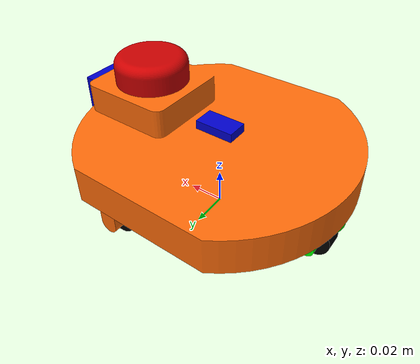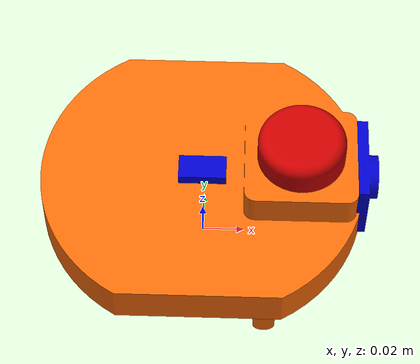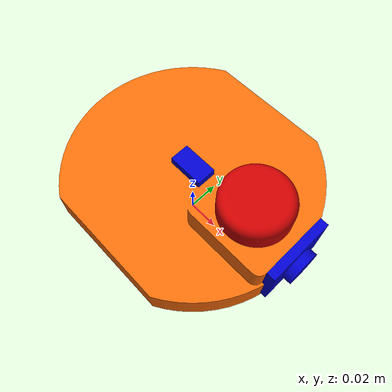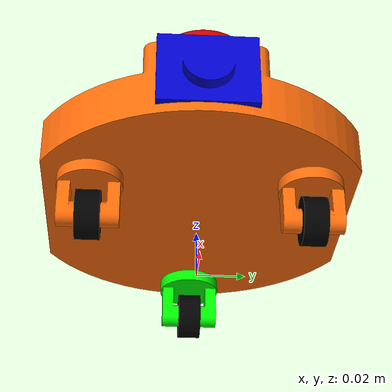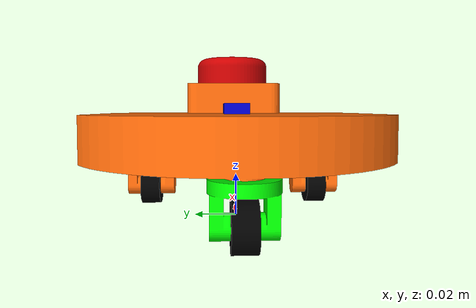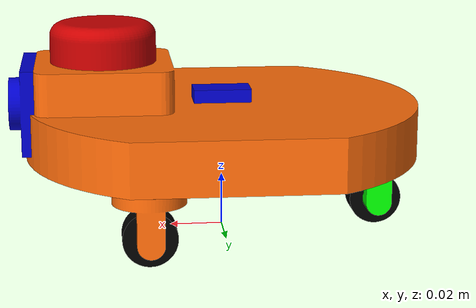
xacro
<?xml version="1.0" ?>
<robot name="steer_drive" xmlns:xacro="http://www.ros.org/wiki/xacro">

<xacro:include filename="$(find steer_drive_description)/urdf/materials.xacro" />
<xacro:include filename="$(find steer_drive_description)/urdf/steer_drive.trans" />
<xacro:include filename="$(find steer_drive_description)/urdf/steer_drive.gazebo" />

<link name="base_footprint"/>
  <joint name="base_joint" type="fixed">
    <parent link="base_footprint"/>
    <child link="base_link" />
    <origin xyz="0 0 0" rpy="0 0 0"/>
  </joint>

<link name="base_link">
  <inertial>
    <origin xyz="0.004894653541401669 -1.2125126773511758e-17 0.04142676341755822" rpy="0 0 0"/>
    <mass value="2.944106705966295"/>
    <inertia ixx="0.003408" iyy="0.004707" izz="0.00774" ixy="-0.0" iyz="-0.0" ixz="-0.000232"/>
  </inertial>
  <visual>
    <origin xyz="0 0 0" rpy="0 0 0"/>
    <geometry>
      <mesh filename="package://steer_drive_description/meshes/base_link.stl" scale="0.001 0.001 0.001"/>
    </geometry>
    <material name="orange"/>
  </visual>
  <collision>
    <origin xyz="0 0 0" rpy="0 0 0"/>
    <geometry>
      <mesh filename="package://steer_drive_description/meshes/base_link.stl" scale="0.001 0.001 0.001"/>
    </geometry>
  </collision>
</link>

<link name="lidar_1">
  <inertial>
    <origin xyz="0.0 -3.901291635943797e-18 0.0072778660919538" rpy="0 0 0"/>
    <mass value="0.01930579331641016"/>
    <inertia ixx="2e-06" iyy="2e-06" izz="4e-06" ixy="-0.0" iyz="-0.0" ixz="0.0"/>
  </inertial>
  <visual>
    <origin xyz="-0.045 -0.0 -0.0655" rpy="0 0 0"/>
    <geometry>
      <mesh filename="package://steer_drive_description/meshes/lidar_1.stl" scale="0.001 0.001 0.001"/>
    </geometry>
    <material name="red"/>
  </visual>
  <collision>
    <origin xyz="-0.045 -0.0 -0.0655" rpy="0 0 0"/>
    <geometry>
      <mesh filename="package://steer_drive_description/meshes/lidar_1.stl" scale="0.001 0.001 0.001"/>
    </geometry>
  </collision>
</link>

<link name="camera_1">
  <inertial>
    <origin xyz="0.0034850227833493203 4.121538431164246e-13 0.0" rpy="0 0 0"/>
    <mass value="0.008449044106402657"/>
    <inertia ixx="2e-06" iyy="1e-06" izz="1e-06" ixy="0.0" iyz="-0.0" ixz="-0.0"/>
  </inertial>
  <visual>
    <origin xyz="-0.070711 -0.0 -0.0495" rpy="0 0 0"/>
    <geometry>
      <mesh filename="package://steer_drive_description/meshes/camera_1.stl" scale="0.001 0.001 0.001"/>
    </geometry>
    <material name="blue"/>
  </visual>
  <collision>
    <origin xyz="-0.070711 -0.0 -0.0495" rpy="0 0 0"/>
    <geometry>
      <mesh filename="package://steer_drive_description/meshes/camera_1.stl" scale="0.001 0.001 0.001"/>
    </geometry>
  </collision>
</link>

<link name="imu_1">
  <inertial>
    <origin xyz="0.0 0.0 0.0025000000000000022" rpy="0 0 0"/>
    <mass value="0.0013992000416994097"/>
    <inertia ixx="0.0" iyy="0.0" izz="0.0" ixy="0.0" iyz="0.0" ixz="0.0"/>
  </inertial>
  <visual>
    <origin xyz="-0.0 -0.0 -0.0495" rpy="0 0 0"/>
    <geometry>
      <mesh filename="package://steer_drive_description/meshes/imu_1.stl" scale="0.001 0.001 0.001"/>
    </geometry>
    <material name="blue"/>
  </visual>
  <collision>
    <origin xyz="-0.0 -0.0 -0.0495" rpy="0 0 0"/>
    <geometry>
      <mesh filename="package://steer_drive_description/meshes/imu_1.stl" scale="0.001 0.001 0.001"/>
    </geometry>
  </collision>
</link>

<link name="arka_hareket_teker_1">
  <inertial>
    <origin xyz="1.7424950371491832e-13 -4.996003610813204e-18 0.0" rpy="0 0 0"/>
    <mass value="0.018496126748009642"/>
    <inertia ixx="1e-06" iyy="1e-06" izz="1e-06" ixy="0.0" iyz="0.0" ixz="0.0"/>
  </inertial>
  <visual>
    <origin xyz="0.06 -0.0 -0.01" rpy="0 0 0"/>
    <geometry>
      <mesh filename="package://steer_drive_description/meshes/arka_hareket_teker_1.stl" scale="0.001 0.001 0.001"/>
    </geometry>
    <material name="black"/>
  </visual>
  <collision>
    <origin xyz="0.06 -0.0 -0.01" rpy="0 0 0"/>
    <geometry>
      <mesh filename="package://steer_drive_description/meshes/arka_hareket_teker_1.stl" scale="0.001 0.001 0.001"/>
    </geometry>
  </collision>
</link>

<link name="on_hareket_teker_1">
  <inertial>
    <origin xyz="1.7428419818443786e-13 0.0 -7.112366251504909e-17" rpy="0 0 0"/>
    <mass value="0.018496126748009642"/>
    <inertia ixx="1e-06" iyy="1e-06" izz="1e-06" ixy="0.0" iyz="0.0" ixz="0.0"/>
  </inertial>
  <visual>
    <origin xyz="-0.03 0.045 -0.01" rpy="0 0 0"/>
    <geometry>
      <mesh filename="package://steer_drive_description/meshes/on_hareket_teker_1.stl" scale="0.001 0.001 0.001"/>
    </geometry>
    <material name="black"/>
  </visual>
  <collision>
    <origin xyz="-0.03 0.045 -0.01" rpy="0 0 0"/>
    <geometry>
      <mesh filename="package://steer_drive_description/meshes/on_hareket_teker_1.stl" scale="0.001 0.001 0.001"/>
    </geometry>
  </collision>
</link>

<link name="arka_donus_teker_1">
  <inertial>
    <origin xyz="6.938893903907228e-18 2.1649348980190553e-17 -0.008733878241274397" rpy="0 0 0"/>
    <mass value="0.04449273765251855"/>
    <inertia ixx="5e-06" iyy="3e-06" izz="4e-06" ixy="0.0" iyz="0.0" ixz="0.0"/>
  </inertial>
  <visual>
    <origin xyz="0.06 -0.0 -0.0275" rpy="0 0 0"/>
    <geometry>
      <mesh filename="package://steer_drive_description/meshes/arka_donus_teker_1.stl" scale="0.001 0.001 0.001"/>
    </geometry>
    <material name="green"/>
  </visual>
  <collision>
    <origin xyz="0.06 -0.0 -0.0275" rpy="0 0 0"/>
    <geometry>
      <mesh filename="package://steer_drive_description/meshes/arka_donus_teker_1.stl" scale="0.001 0.001 0.001"/>
    </geometry>
  </collision>
</link>

<link name="on_donus_teker_1">
  <inertial>
    <origin xyz="-6.938893903907228e-18 6.938893903907228e-18 -0.00873387824127446" rpy="0 0 0"/>
    <mass value="0.04449273765251855"/>
    <inertia ixx="5e-06" iyy="3e-06" izz="4e-06" ixy="0.0" iyz="0.0" ixz="0.0"/>
  </inertial>
  <visual>
    <origin xyz="-0.03 0.045 -0.0275" rpy="0 0 0"/>
    <geometry>
      <mesh filename="package://steer_drive_description/meshes/on_donus_teker_1.stl" scale="0.001 0.001 0.001"/>
    </geometry>
    <material name="orange"/>
  </visual>
  <collision>
    <origin xyz="-0.03 0.045 -0.0275" rpy="0 0 0"/>
    <geometry>
      <mesh filename="package://steer_drive_description/meshes/on_donus_teker_1.stl" scale="0.001 0.001 0.001"/>
    </geometry>
  </collision>
</link>

<link name="on_donus_teker_2">
  <inertial>
    <origin xyz="-6.938893903907228e-18 1.3877787807814457e-17 -0.00873387824127446" rpy="0 0 0"/>
    <mass value="0.04449273765251855"/>
    <inertia ixx="5e-06" iyy="3e-06" izz="4e-06" ixy="0.0" iyz="0.0" ixz="0.0"/>
  </inertial>
  <visual>
    <origin xyz="-0.03 -0.045 -0.0275" rpy="0 0 0"/>
    <geometry>
      <mesh filename="package://steer_drive_description/meshes/on_donus_teker_2.stl" scale="0.001 0.001 0.001"/>
    </geometry>
    <material name="orange"/>
  </visual>
  <collision>
    <origin xyz="-0.03 -0.045 -0.0275" rpy="0 0 0"/>
    <geometry>
      <mesh filename="package://steer_drive_description/meshes/on_donus_teker_2.stl" scale="0.001 0.001 0.001"/>
    </geometry>
  </collision>
</link>

<link name="on_hareket_teker_2">
  <inertial>
    <origin xyz="1.74273789843582e-13 2.0816681711721685e-17 -6.071532165918825e-17" rpy="0 0 0"/>
    <mass value="0.018496126748009642"/>
    <inertia ixx="1e-06" iyy="1e-06" izz="1e-06" ixy="0.0" iyz="0.0" ixz="0.0"/>
  </inertial>
  <visual>
    <origin xyz="-0.03 -0.045 -0.01" rpy="0 0 0"/>
    <geometry>
      <mesh filename="package://steer_drive_description/meshes/on_hareket_teker_2.stl" scale="0.001 0.001 0.001"/>
    </geometry>
    <material name="black"/>
  </visual>
  <collision>
    <origin xyz="-0.03 -0.045 -0.01" rpy="0 0 0"/>
    <geometry>
      <mesh filename="package://steer_drive_description/meshes/on_hareket_teker_2.stl" scale="0.001 0.001 0.001"/>
    </geometry>
  </collision>
</link>

<joint name="Rigid 6" type="fixed">
  <origin xyz="0.045 0.0 0.0655" rpy="0 0 0"/>
  <parent link="base_link"/>
  <child link="lidar_1"/>
</joint>

<joint name="Rigid 7" type="fixed">
  <origin xyz="0.070711 0.0 0.0495" rpy="0 0 0"/>
  <parent link="base_link"/>
  <child link="camera_1"/>
</joint>

<joint name="Rigid 8" type="fixed">
  <origin xyz="0.0 0.0 0.0495" rpy="0 0 0"/>
  <parent link="base_link"/>
  <child link="imu_1"/>
</joint>

<joint name="rear_drive_vel_motor" type="continuous">
  <origin xyz="0.0 0.0 -0.0175" rpy="0 0 0"/>
  <parent link="arka_donus_teker_1"/>
  <child link="arka_hareket_teker_1"/>
  <axis xyz="0.0 1.0 -0.0"/>
</joint>

<joint name="front_right_drive" type="continuous">
  <origin xyz="0.0 0.0 -0.0175" rpy="0 0 0"/>
  <parent link="on_donus_teker_1"/>
  <child link="on_hareket_teker_1"/>
  <axis xyz="0.0 1.0 0.0"/>
</joint>

<joint name="rear_steer_pos_motor" type="continuous">
  <origin xyz="-0.06 0.0 0.0275" rpy="0 0 0"/>
  <parent link="base_link"/>
  <child link="arka_donus_teker_1"/>
  <axis xyz="0.0 0.0 -1.0"/>
</joint>

<joint name="front_right_steer" type="fixed">
  <origin xyz="0.03 -0.045 0.0275" rpy="0 0 0"/>
  <parent link="base_link"/>
  <child link="on_donus_teker_1"/>
</joint>

<joint name="front_left_steer" type="fixed">
  <origin xyz="0.03 0.045 0.0275" rpy="0 0 0"/>
  <parent link="base_link"/>
  <child link="on_donus_teker_2"/>
</joint>

<joint name="front_left_drive" type="continuous">
  <origin xyz="0.0 0.0 -0.0175" rpy="0 0 0"/>
  <parent link="on_donus_teker_2"/>
  <child link="on_hareket_teker_2"/>
  <axis xyz="0.0 1.0 0.0"/>
</joint>

</robot>

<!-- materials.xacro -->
<robot name="steer_drive" xmlns:xacro="http://www.ros.org/wiki/xacro" >

<material name="silver">
  <color rgba="0.700 0.700 0.700 1.000"/>
</material>

<material name="black">
  <color rgba="0.0 0.0 0.0 1.0"/>
</material>

<material name="blue">
  <color rgba="0.0 0.0 0.8 1.0"/>
</material>

<material name="green">
  <color rgba="0.0 1.0 0.0 1.0"/>
</material>

<material name="grey">
  <color rgba="0.2 0.2 0.2 1.0"/>
</material>

<material name="orange">
  <color rgba="${255/255} ${108/255} ${10/255} 1.0"/>
</material>

<material name="brown">
  <color rgba="${222/255} ${207/255} ${195/255} 1.0"/>
</material>

<material name="red">
  <color rgba="0.8 0.0 0.0 1.0"/>
</material>

<material name="white">
  <color rgba="1.0 1.0 1.0 1.0"/>
</material>

</robot>
